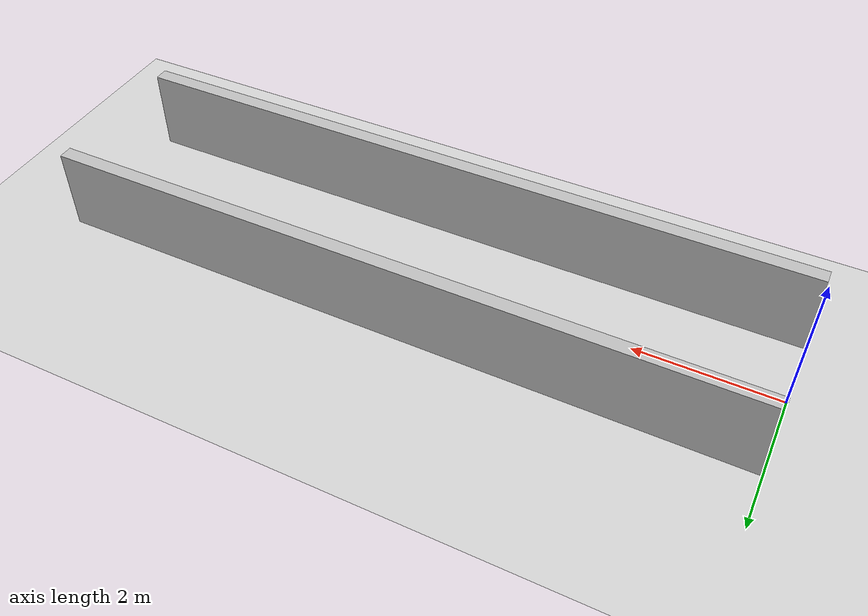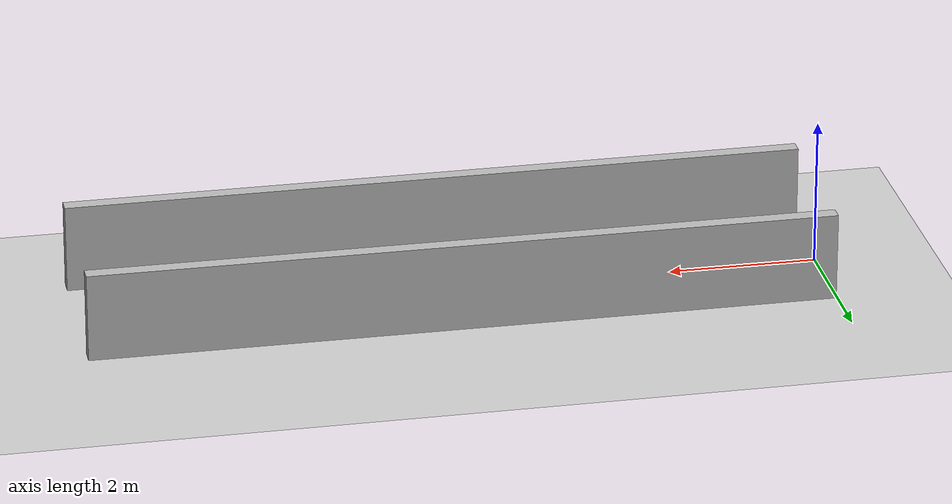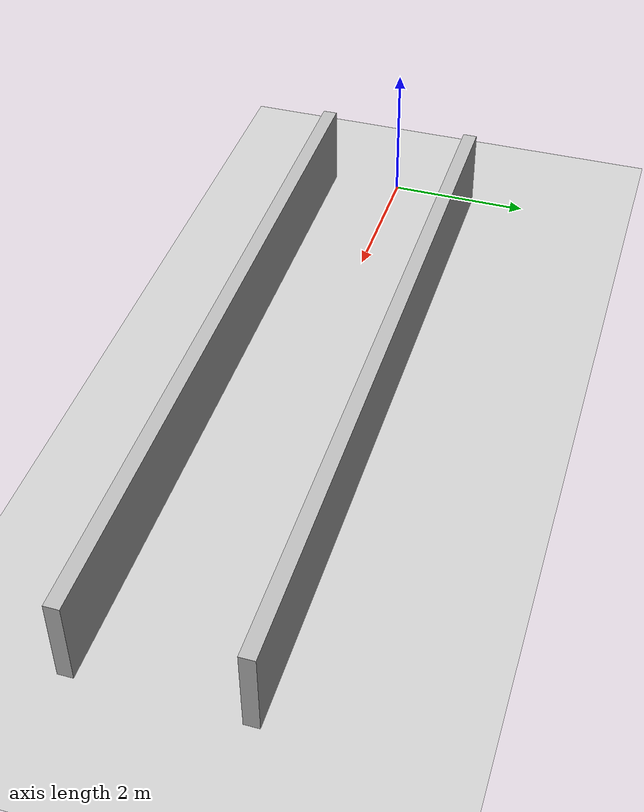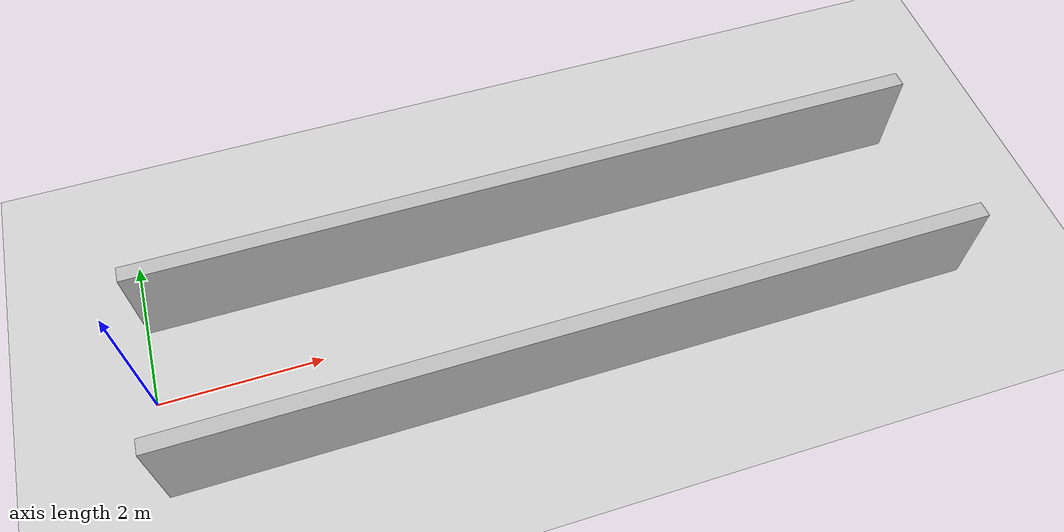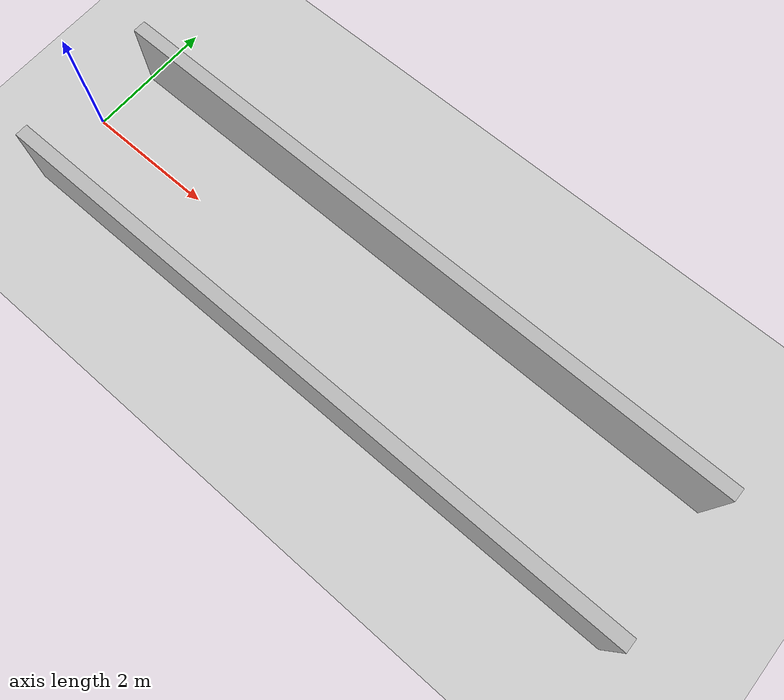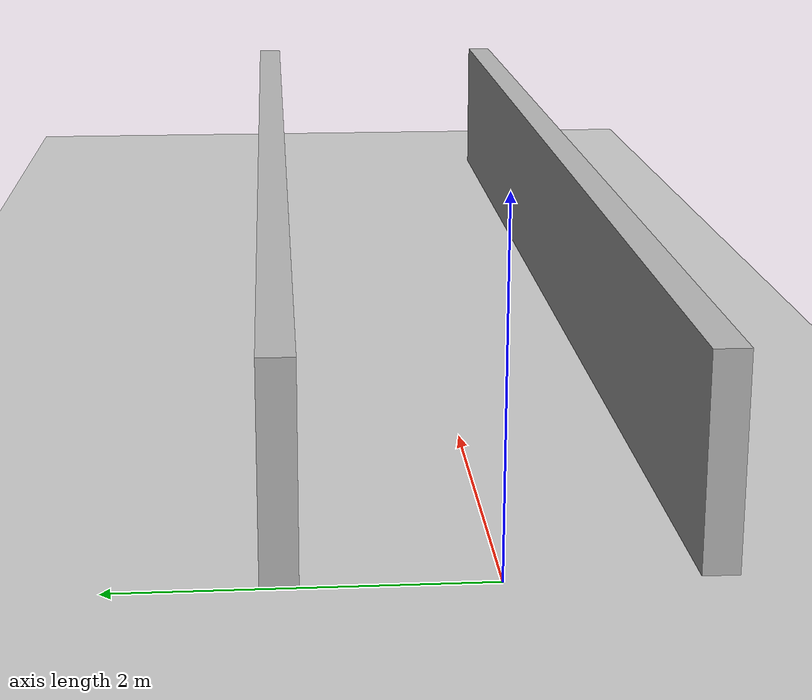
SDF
<?xml version="1.0"?>
<sdf version="1.6">
  <world name="v2-04c-q-corridor-s4494">
    <gravity>0 0 -9.81</gravity>
    <physics name="v2_deterministic" type="ode">
      <max_step_size>0.002</max_step_size>
      <real_time_update_rate>500</real_time_update_rate>
    </physics>
    <include>
      <uri>model://sun</uri>
    </include>
    <include>
      <uri>model://ground_plane</uri>
    </include>
    <model name="q-corridor-left">
      <static>true</static>
      <pose>5.013790374 1.105656539 0.600000000 0 0 -0.002413188</pose>
      <link name="link">
        <collision name="collision">
          <geometry>
            <box>
              <size>10.000000 0.200000 1.200000</size>
            </box>
          </geometry>
        </collision>
        <visual name="visual">
          <geometry>
            <box>
              <size>10.000000 0.200000 1.200000</size>
            </box>
          </geometry>
        </visual>
      </link>
    </model>
    <model name="q-corridor-right">
      <static>true</static>
      <pose>4.997766340 -1.096861835 0.600000000 0 0 0.001398295</pose>
      <link name="link">
        <collision name="collision">
          <geometry>
            <box>
              <size>10.000000 0.200000 1.200000</size>
            </box>
          </geometry>
        </collision>
        <visual name="visual">
          <geometry>
            <box>
              <size>10.000000 0.200000 1.200000</size>
            </box>
          </geometry>
        </visual>
      </link>
    </model>
  </world>
</sdf>
